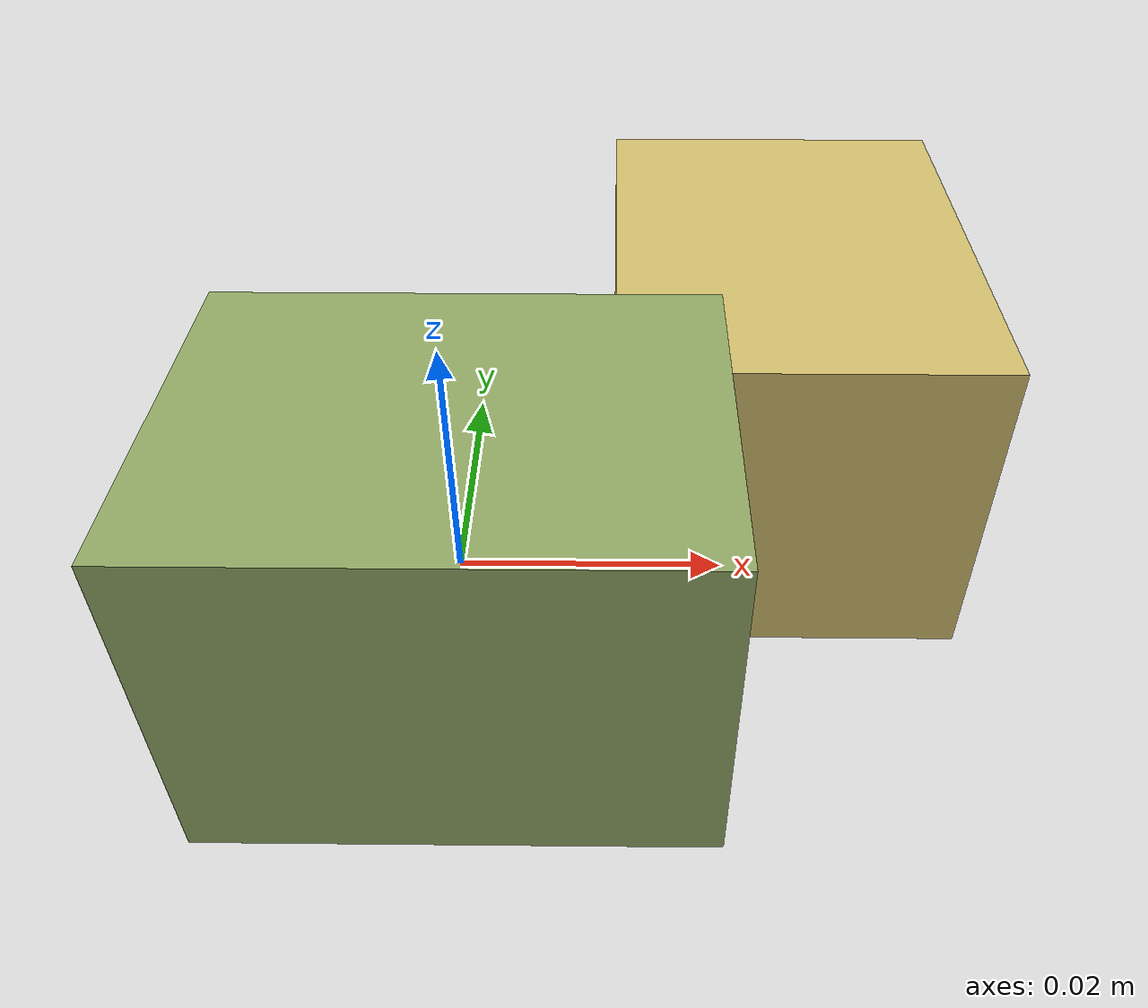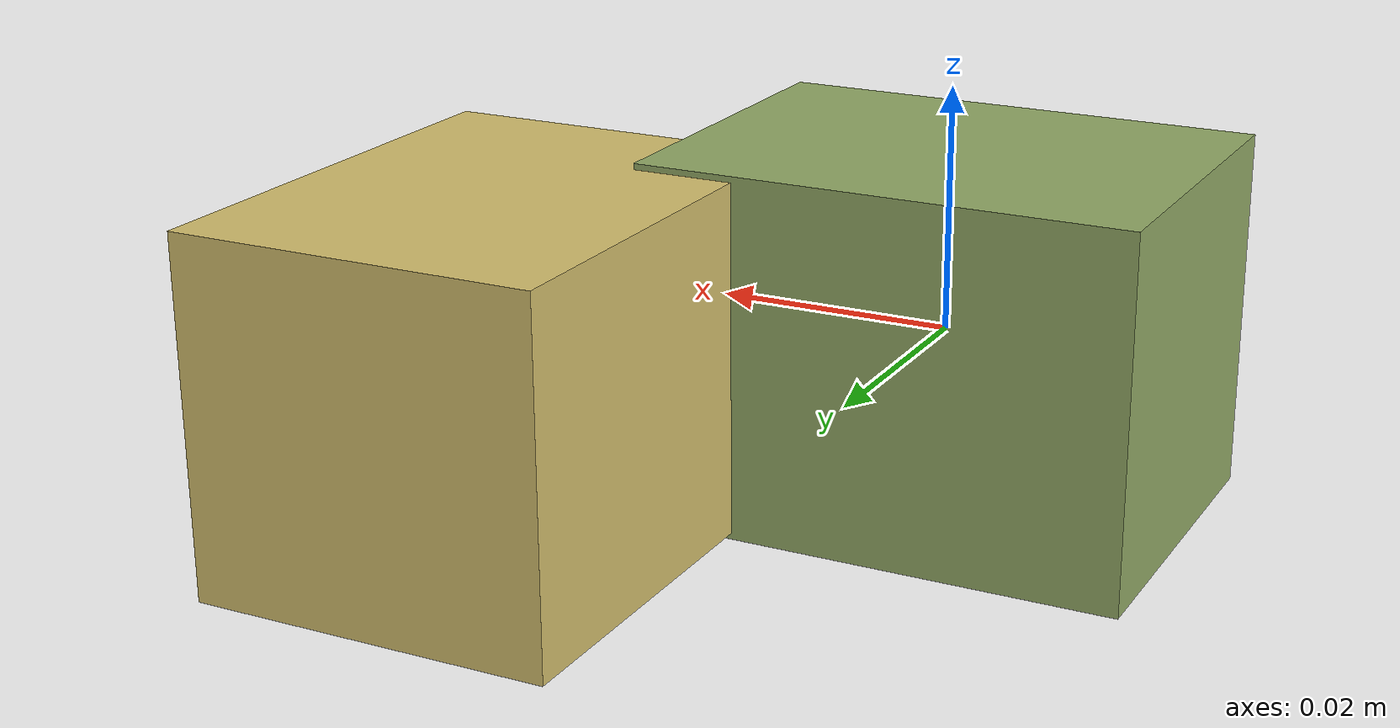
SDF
<sdf version="1.4"><world name="default"><model name="object0"><link name="link1"><pose>0 0 0 0 0 0</pose><inertial><pose>0 0 0 0 0 0</pose><mass>0.021893620817390796</mass><inertia><ixx>3.284043122608619e-06</ixx><ixy>0</ixy><iyy>4.64107366293345e-06</iyy><ixz>0</ixz><iyz>0</iyz><izz>4.64107366293345e-06</izz></inertia></inertial><visual name="link1_visual"><pose>0 0  0 0 0 0</pose><geometry><box><size>0.0405437422544274 0.03 0.03</size></box></geometry><material><diffuse>0.5819026786858036 0.672644832151683 0.40372975944797834 1</diffuse></material></visual><collision><pose>0 0  0 0 0 0</pose><geometry><box><size>0.0405437422544274 0.03 0.03</size></box></geometry></collision></link><link name="link2"><pose>0.026898964343378948 0.024610154655928987 0 0 0 0</pose><inertial><pose>0 0 0 0 0 0</pose><mass>0.020903672889975276</mass><inertia><ixx>4.0753508443264854e-06</ixx><ixy>0</ixy><iyy>3.032774541787246e-06</iyy><ixz>0</ixz><iyz>0</iyz><izz>4.1781272360355305e-06</izz></inertia></inertial><visual name="link2_visual"><pose>0 0  0 0 0 0</pose><geometry><box><size>0.03 0.03871050535180606 0.028999999999999998</size></box></geometry><material><diffuse>0.8427935317473605 0.761435193715027 0.4359588706931842 1</diffuse></material></visual><collision><pose>0 0  0 0 0 0</pose><geometry><box><size>0.03 0.03871050535180606 0.028999999999999998</size></box></geometry></collision></link><joint name="link_joint_0" type="fixed"><parent>link1</parent><child>link2</child><pose>0 0 0 0 0 0</pose><axis><xyz>0 0 1</xyz></axis></joint></model></world></sdf>
